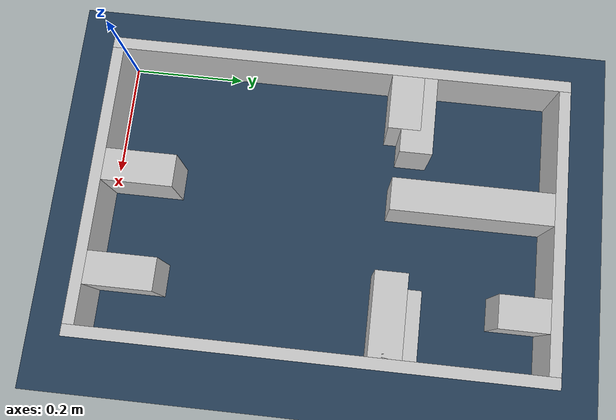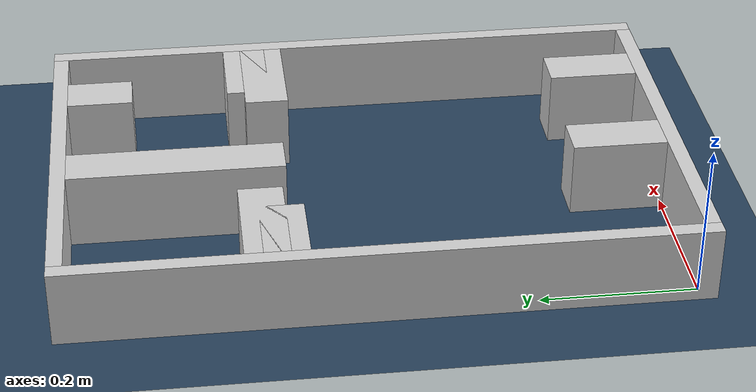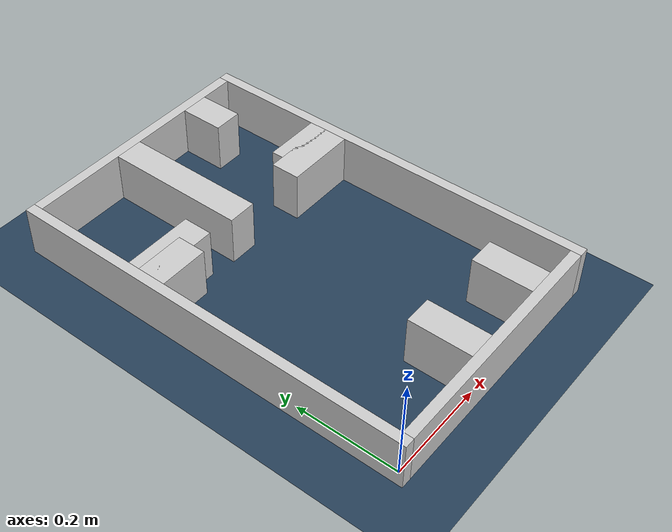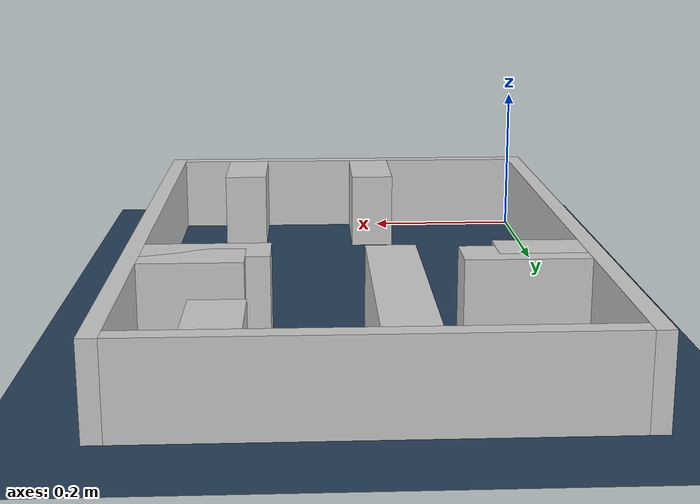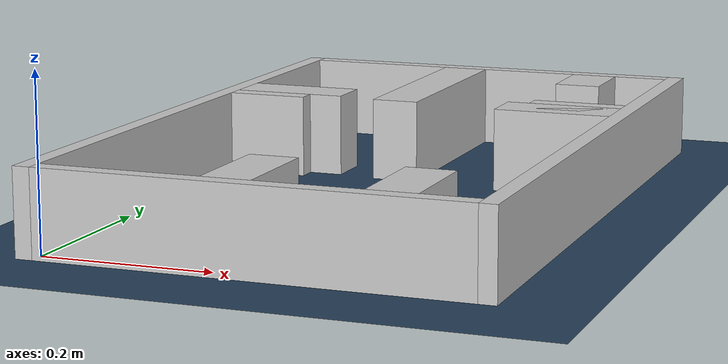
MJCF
<?xml version="1.0" ?>
<mujoco model="generated_real_template">
  <compiler angle="degree"/>
  <option timestep="0.002" integrator="implicitfast" iterations="100" cone="elliptic"/>
  <default>
    <geom density="1"/>
  </default>
  <asset>
    <texture builtin="gradient" height="3072" rgb1="0.3 0.5 0.7" rgb2="0 0 0" type="skybox" width="512"/>
    <texture builtin="checker" height="300" mark="edge" markrgb="0.8 0.8 0.8" name="groundplane" rgb1="0.2 0.3 0.4" rgb2="0.1 0.2 0.3" type="2d" width="300"/>
    <material name="groundplane" reflectance="0.2" texrepeat="5 5" texture="groundplane" texuniform="true"/>
  </asset>
  <worldbody>
    <light dir="0 0 -1" directional="true" pos="0 0 1.5"/>
    <geom name="floor" type="plane" condim="4" friction="0.5 0.005 0.001" material="groundplane" size="0 0 0.05"/>
    <body name="walls">
      <geom name="wall_boundary_left" type="box" condim="4" friction="1.0 0.005 0.0001" rgba="0.8 0.8 0.8 1" pos="-0.010000 0.387500 0.050000" euler="0 0 0.000000" size="0.010000 0.407500 0.050000"/>
      <geom name="wall_boundary_right" type="box" condim="4" friction="1.0 0.005 0.0001" rgba="0.8 0.8 0.8 1" pos="0.500000 0.387500 0.050000" euler="0 0 0.000000" size="0.010000 0.407500 0.050000"/>
      <geom name="wall_boundary_bottom" type="box" condim="4" friction="1.0 0.005 0.0001" rgba="0.8 0.8 0.8 1" pos="0.245000 -0.010000 0.050000" euler="0 0 0.000000" size="0.245000 0.010000 0.050000"/>
      <geom name="wall_boundary_top" type="box" condim="4" friction="1.0 0.005 0.0001" rgba="0.8 0.8 0.8 1" pos="0.245000 0.785000 0.050000" euler="0 0 0.000000" size="0.245000 0.010000 0.050000"/>
      <geom name="wall_inner_1_1" type="box" condim="4" friction="1.0 0.005 0.0001" rgba="0.8 0.8 0.8 1" pos="0.394251 0.059091 0.050000" euler="0 0 90.000000" size="0.059091 0.028500 0.050000"/>
      <geom name="wall_inner_1_2" type="box" condim="4" friction="1.0 0.005 0.0001" rgba="0.8 0.8 0.8 1" pos="0.394251 0.731774 0.050000" euler="0 0 90.000000" size="0.043226 0.028500 0.050000"/>
      <geom name="wall_inner_2_1" type="box" condim="4" friction="1.0 0.005 0.0001" rgba="0.8 0.8 0.8 1" pos="0.069608 0.532609 0.050000" euler="0 0 0.000000" size="0.069608 0.028500 0.050000"/>
      <geom name="wall_inner_2_2" type="box" condim="4" friction="1.0 0.005 0.0001" rgba="0.8 0.8 0.8 1" pos="0.432462 0.532609 0.050000" euler="0 0 0.000000" size="0.057538 0.028500 0.050000"/>
      <geom name="wall_inner_3_1" type="box" condim="4" friction="1.0 0.005 0.0001" rgba="0.8 0.8 0.8 1" pos="0.214523 0.061838 0.050000" euler="0 0 90.000000" size="0.061838 0.028500 0.050000"/>
      <geom name="wall_inner_3_2" type="box" condim="4" friction="1.0 0.005 0.0001" rgba="0.8 0.8 0.8 1" pos="0.214523 0.635420 0.050000" euler="0 0 90.000000" size="0.139580 0.028500 0.050000"/>
      <geom name="wall_inner_4_1" type="box" condim="4" friction="1.0 0.005 0.0001" rgba="0.8 0.8 0.8 1" pos="0.049044 0.509292 0.050000" euler="0 0 0.000000" size="0.049044 0.028500 0.050000"/>
      <geom name="wall_inner_4_2" type="box" condim="4" friction="1.0 0.005 0.0001" rgba="0.8 0.8 0.8 1" pos="0.418831 0.509292 0.050000" euler="0 0 0.000000" size="0.071169 0.028500 0.050000"/>
    </body>
  </worldbody>
</mujoco>
